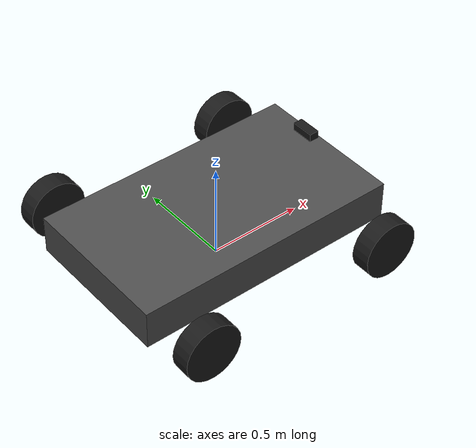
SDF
<?xml version="1.0"?>
<sdf version="1.9">
  <model name="kart">
    <pose>0 0 0.22 0 0 0</pose>

    <!-- Chassis -->
    <link name="chassis">
      <inertial>
        <mass>80</mass>
        <inertia>
          <ixx>5.0</ixx><ixy>0</ixy><ixz>0</ixz>
          <iyy>12.0</iyy><iyz>0</iyz>
          <izz>14.0</izz>
        </inertia>
      </inertial>
      <visual name="chassis_visual">
        <geometry>
          <box><size>1.4 0.8 0.2</size></box>
        </geometry>
        <material>
          <ambient>0.3 0.3 0.3 1</ambient>
          <diffuse>0.3 0.3 0.3 1</diffuse>
        </material>
      </visual>
      <collision name="chassis_collision">
        <geometry>
          <box><size>1.4 0.8 0.2</size></box>
        </geometry>
      </collision>
    </link>

    <!-- Camera mount (on top of chassis, front) -->
    <link name="camera_link">
      <pose relative_to="chassis">0.55 0 0.25 0 0 0</pose>
      <inertial>
        <mass>0.1</mass>
        <inertia>
          <ixx>0.001</ixx><ixy>0</ixy><ixz>0</ixz>
          <iyy>0.001</iyy><iyz>0</iyz>
          <izz>0.001</izz>
        </inertia>
      </inertial>
      <visual name="camera_visual">
        <geometry>
          <box><size>0.05 0.12 0.04</size></box>
        </geometry>
        <material>
          <ambient>0.1 0.1 0.1 1</ambient>
          <diffuse>0.1 0.1 0.1 1</diffuse>
        </material>
      </visual>
      <sensor name="rgbd_camera" type="rgbd_camera">
        <always_on>1</always_on>
        <update_rate>10</update_rate>
        <camera>
          <horizontal_fov>1.396</horizontal_fov>
          <image>
            <width>640</width>
            <height>360</height>
            <format>R8G8B8</format>
          </image>
          <clip>
            <near>0.1</near>
            <far>50</far>
          </clip>
          <depth_camera>
            <clip>
              <near>0.1</near>
              <far>50</far>
            </clip>
          </depth_camera>
        </camera>
        <topic>kart/rgbd</topic>
      </sensor>
    </link>

    <joint name="camera_joint" type="fixed">
      <parent>chassis</parent>
      <child>camera_link</child>
    </joint>

    <!-- Front left steering knuckle -->
    <link name="front_left_steering">
      <pose relative_to="chassis">0.525 0.55 -0.05 0 0 0</pose>
      <inertial>
        <mass>0.5</mass>
        <inertia>
          <ixx>0.01</ixx><ixy>0</ixy><ixz>0</ixz>
          <iyy>0.01</iyy><iyz>0</iyz>
          <izz>0.01</izz>
        </inertia>
      </inertial>
    </link>

    <!-- Front right steering knuckle -->
    <link name="front_right_steering">
      <pose relative_to="chassis">0.525 -0.55 -0.05 0 0 0</pose>
      <inertial>
        <mass>0.5</mass>
        <inertia>
          <ixx>0.01</ixx><ixy>0</ixy><ixz>0</ixz>
          <iyy>0.01</iyy><iyz>0</iyz>
          <izz>0.01</izz>
        </inertia>
      </inertial>
    </link>

    <!-- Front left wheel -->
    <link name="front_left_wheel">
      <pose relative_to="front_left_steering">0 0.05 0 -1.5707963 0 0</pose>
      <inertial>
        <mass>3</mass>
        <inertia>
          <ixx>0.02</ixx><ixy>0</ixy><ixz>0</ixz>
          <iyy>0.02</iyy><iyz>0</iyz>
          <izz>0.03</izz>
        </inertia>
      </inertial>
      <visual name="visual">
        <geometry>
          <cylinder><radius>0.15</radius><length>0.1</length></cylinder>
        </geometry>
        <material>
          <ambient>0.1 0.1 0.1 1</ambient>
          <diffuse>0.1 0.1 0.1 1</diffuse>
        </material>
      </visual>
      <collision name="collision">
        <geometry>
          <cylinder><radius>0.15</radius><length>0.1</length></cylinder>
        </geometry>
        <surface>
          <friction>
            <ode><mu>1.2</mu><mu2>0.8</mu2><fdir1>0 0 1</fdir1></ode>
          </friction>
        </surface>
      </collision>
    </link>

    <!-- Front right wheel -->
    <link name="front_right_wheel">
      <pose relative_to="front_right_steering">0 -0.05 0 -1.5707963 0 0</pose>
      <inertial>
        <mass>3</mass>
        <inertia>
          <ixx>0.02</ixx><ixy>0</ixy><ixz>0</ixz>
          <iyy>0.02</iyy><iyz>0</iyz>
          <izz>0.03</izz>
        </inertia>
      </inertial>
      <visual name="visual">
        <geometry>
          <cylinder><radius>0.15</radius><length>0.1</length></cylinder>
        </geometry>
        <material>
          <ambient>0.1 0.1 0.1 1</ambient>
          <diffuse>0.1 0.1 0.1 1</diffuse>
        </material>
      </visual>
      <collision name="collision">
        <geometry>
          <cylinder><radius>0.15</radius><length>0.1</length></cylinder>
        </geometry>
        <surface>
          <friction>
            <ode><mu>1.2</mu><mu2>0.8</mu2><fdir1>0 0 1</fdir1></ode>
          </friction>
        </surface>
      </collision>
    </link>

    <!-- Rear left wheel -->
    <link name="rear_left_wheel">
      <pose relative_to="chassis">-0.525 0.6 -0.05 -1.5707963 0 0</pose>
      <inertial>
        <mass>3</mass>
        <inertia>
          <ixx>0.02</ixx><ixy>0</ixy><ixz>0</ixz>
          <iyy>0.02</iyy><iyz>0</iyz>
          <izz>0.03</izz>
        </inertia>
      </inertial>
      <visual name="visual">
        <geometry>
          <cylinder><radius>0.15</radius><length>0.1</length></cylinder>
        </geometry>
        <material>
          <ambient>0.1 0.1 0.1 1</ambient>
          <diffuse>0.1 0.1 0.1 1</diffuse>
        </material>
      </visual>
      <collision name="collision">
        <geometry>
          <cylinder><radius>0.15</radius><length>0.1</length></cylinder>
        </geometry>
        <surface>
          <friction>
            <ode><mu>1.2</mu><mu2>0.8</mu2><fdir1>0 0 1</fdir1></ode>
          </friction>
        </surface>
      </collision>
    </link>

    <!-- Rear right wheel -->
    <link name="rear_right_wheel">
      <pose relative_to="chassis">-0.525 -0.6 -0.05 -1.5707963 0 0</pose>
      <inertial>
        <mass>3</mass>
        <inertia>
          <ixx>0.02</ixx><ixy>0</ixy><ixz>0</ixz>
          <iyy>0.02</iyy><iyz>0</iyz>
          <izz>0.03</izz>
        </inertia>
      </inertial>
      <visual name="visual">
        <geometry>
          <cylinder><radius>0.15</radius><length>0.1</length></cylinder>
        </geometry>
        <material>
          <ambient>0.1 0.1 0.1 1</ambient>
          <diffuse>0.1 0.1 0.1 1</diffuse>
        </material>
      </visual>
      <collision name="collision">
        <geometry>
          <cylinder><radius>0.15</radius><length>0.1</length></cylinder>
        </geometry>
        <surface>
          <friction>
            <ode><mu>1.2</mu><mu2>0.8</mu2><fdir1>0 0 1</fdir1></ode>
          </friction>
        </surface>
      </collision>
    </link>

    <!-- Steering joints (front) -->
    <joint name="front_left_steering_joint" type="revolute">
      <parent>chassis</parent>
      <child>front_left_steering</child>
      <axis>
        <xyz>0 0 1</xyz>
        <limit>
          <lower>-0.6</lower>
          <upper>0.6</upper>
          <effort>1e6</effort>
        </limit>
      </axis>
    </joint>

    <joint name="front_right_steering_joint" type="revolute">
      <parent>chassis</parent>
      <child>front_right_steering</child>
      <axis>
        <xyz>0 0 1</xyz>
        <limit>
          <lower>-0.6</lower>
          <upper>0.6</upper>
          <effort>1e6</effort>
        </limit>
      </axis>
    </joint>

    <!-- Wheel spin joints -->
    <joint name="front_left_wheel_joint" type="revolute">
      <parent>front_left_steering</parent>
      <child>front_left_wheel</child>
      <axis>
        <xyz>0 0 1</xyz>
        <limit>
          <lower>-1e16</lower>
          <upper>1e16</upper>
        </limit>
      </axis>
    </joint>

    <joint name="front_right_wheel_joint" type="revolute">
      <parent>front_right_steering</parent>
      <child>front_right_wheel</child>
      <axis>
        <xyz>0 0 1</xyz>
        <limit>
          <lower>-1e16</lower>
          <upper>1e16</upper>
        </limit>
      </axis>
    </joint>

    <joint name="rear_left_wheel_joint" type="revolute">
      <parent>chassis</parent>
      <child>rear_left_wheel</child>
      <axis>
        <xyz>0 0 1</xyz>
        <limit>
          <lower>-1e16</lower>
          <upper>1e16</upper>
        </limit>
      </axis>
    </joint>

    <joint name="rear_right_wheel_joint" type="revolute">
      <parent>chassis</parent>
      <child>rear_right_wheel</child>
      <axis>
        <xyz>0 0 1</xyz>
        <limit>
          <lower>-1e16</lower>
          <upper>1e16</upper>
        </limit>
      </axis>
    </joint>

    <!-- Ground-truth odometry (from actual sim pose, no drift) -->
    <plugin
      filename="ignition-gazebo-odometry-publisher-system"
      name="ignition::gazebo::systems::OdometryPublisher">
      <odom_topic>model/kart/odom_gt</odom_topic>
      <odom_frame>world</odom_frame>
      <robot_base_frame>kart/chassis</robot_base_frame>
      <dimensions>3</dimensions>
    </plugin>

    <!-- Velocity control: directly sets chassis velocity (no wheel friction needed) -->
    <plugin
      filename="ignition-gazebo-velocity-control-system"
      name="ignition::gazebo::systems::VelocityControl">
      <topic>kart/vel_cmd</topic>
    </plugin>

  </model>
</sdf>
